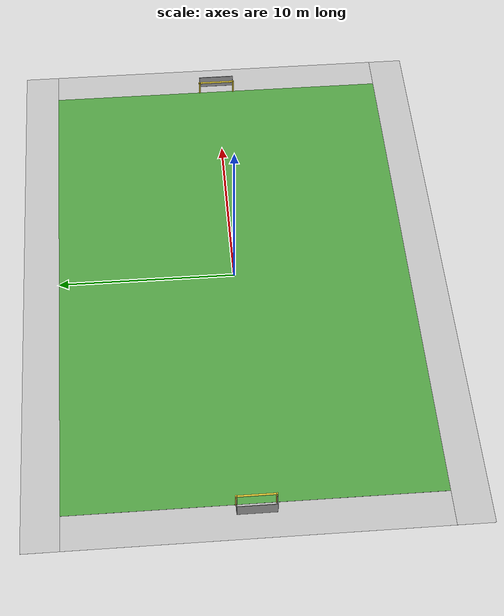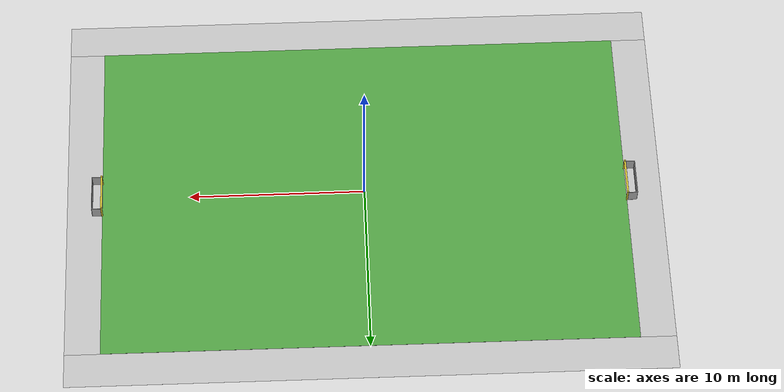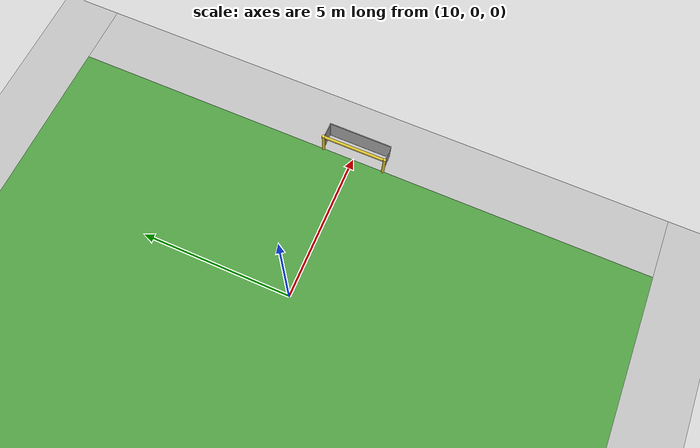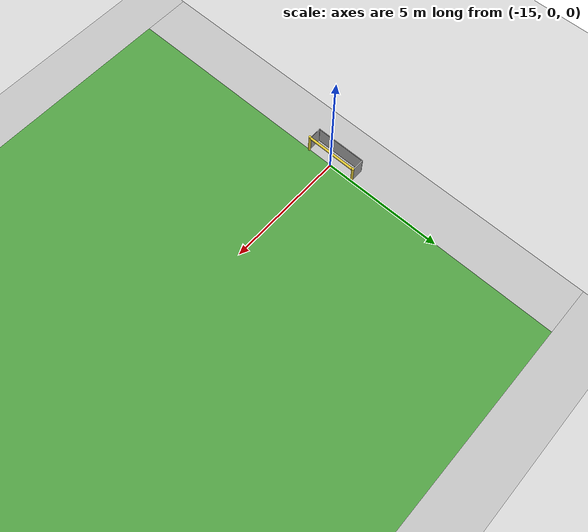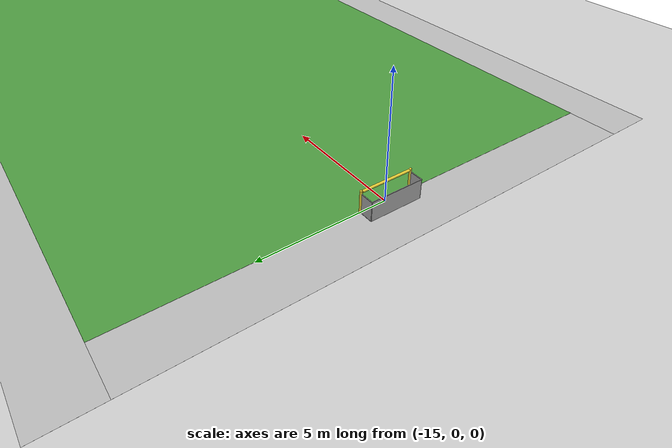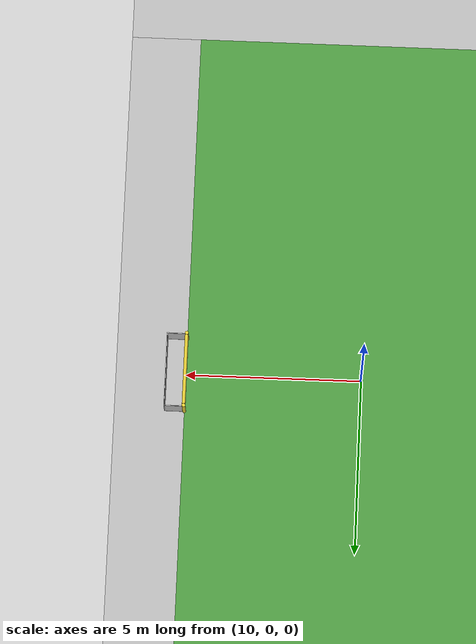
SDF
<sdf version="1.4">
 <world name="default">
  <physics type="ode"><max_step_size>0.004</max_step_size></physics>
  <scene><grid>false</grid></scene>
  <include><uri>model://sun</uri></include>
  <include><uri>model://ground_plane</uri></include>
  <include><uri>model://robocup_3Dsim_field</uri></include>
  <include><pose>-15.0 0 0 0 0 3.1416</pose><uri>model://robocup_3Dsim_goal</uri></include>
  <include><pose>15.0 0 0 0 0 0</pose><uri>model://robocup_3Dsim_goal</uri></include>
  <plugin name="hydra" filename="libHydraPlugin.so"/>
  <plugin name="game_controller" filename="librobocup_gamecontroller_plugin.so">
   <ball>soccer_ball</ball>
   <team>
    <name>red</name>
    <member>red_bot1</member>
    <member>red_bot2</member>
    <member>red_bot3</member>
    <member>red_bot4</member>
    <member>red_bot5</member>
    <member>red_bot6</member>
    <member>red_bot7</member>
    <member>red_bot8</member>
    <member>red_bot9</member>
    <member>red_bot10</member>
    <member>red_bot11</member>
   </team>
   <team>
    <name>blue</name>
    <member>blue_bot1</member>
    <member>blue_bot2</member>
    <member>blue_bot3</member>
    <member>blue_bot4</member>
    <member>blue_bot5</member>
    <member>blue_bot6</member>
    <member>blue_bot7</member>
    <member>blue_bot8</member>
    <member>blue_bot9</member>
    <member>blue_bot10</member>
    <member>blue_bot11</member>
   </team>
  </plugin>
 </world>
</sdf>

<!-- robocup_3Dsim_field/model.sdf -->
<sdf version="1.5">
  <model name="robocup_3d_field">
    <static>true</static>
    <link name="field">
      <pose>0 0 0.01 0 0 0</pose>
      <collision name="collision">
        <geometry>
          <plane>
            <normal>0 0 1</normal>
            <size>30.0 20.0</size>
          </plane>
        </geometry>
        <surface>
          <friction>
            <ode>
              <mu>100</mu>
              <mu2>50</mu2>
            </ode>
          </friction>
        </surface>
      </collision>
      <visual name="base1">
        <pose>0 11 0.001 0 0 0</pose>
        <cast_shadows>false</cast_shadows>
        <geometry>
          <plane>
            <normal>0 0 1</normal>
            <size>34.0 2.0</size>
          </plane>
        </geometry>
        <material>
          <script>
            <uri>model://../model_source/models/robocup_3Dsim_field/materials/scripts/</uri>
            <uri>model://../model_source/models/robocup_3Dsim_field/materials/textures/</uri>
            <name>RoboCup/FieldBorder</name>
          </script>
        </material>
      </visual>
      <visual name="base2">
        <pose>0 -11 0.001 0 0 0</pose>
        <cast_shadows>false</cast_shadows>
        <geometry>
          <plane>
            <normal>0 0 1</normal>
            <size>34.0 2.0</size>
          </plane>
        </geometry>
        <material>
          <script>
            <uri>model://../model_source/models/robocup_3Dsim_field/materials/scripts/</uri>
            <uri>model://../model_source/models/robocup_3Dsim_field/materials/textures/</uri>
            <name>RoboCup/FieldBorder</name>
          </script>
        </material>
      </visual>
      <visual name="base3">
        <pose>16 0 0.001 0 0 0</pose>
        <cast_shadows>false</cast_shadows>
        <geometry>
          <plane>
            <normal>0 0 1</normal>
            <size>2.0 20.0</size>
          </plane>
        </geometry>
        <material>
          <script>
            <uri>model://../model_source/models/robocup_3Dsim_field/materials/scripts/</uri>
            <uri>model://../model_source/models/robocup_3Dsim_field/materials/textures/</uri>
            <name>RoboCup/FieldBorder</name>
          </script>
        </material>
      </visual>
      <visual name="base4">
        <pose>-16 0 0.001 0 0 0</pose>
        <cast_shadows>false</cast_shadows>
        <geometry>
          <plane>
            <normal>0 0 1</normal>
            <size>2.0 20.0</size>
          </plane>
        </geometry>
        <material>
          <script>
            <uri>model://../model_source/models/robocup_3Dsim_field/materials/scripts/</uri>
            <uri>model://../model_source/models/robocup_3Dsim_field/materials/textures/</uri>
            <name>RoboCup/FieldBorder</name>
          </script>
        </material>
      </visual>
      <visual name="carpet">
        <cast_shadows>false</cast_shadows>
        <geometry>
          <plane>
            <normal>0 0 1</normal>
            <size>30.0 20.0</size>
          </plane>
        </geometry>
        <material>
          <script>
            <uri>model://../model_source/models/robocup_3Dsim_field/materials/scripts/</uri>
            <uri>model://../model_source/models/robocup_3Dsim_field/materials/textures/</uri>
            <name>RoboCup/Grass</name>
          </script>
        </material>
      </visual>
    </link>
  </model>
</sdf>

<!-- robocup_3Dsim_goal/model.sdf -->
<sdf version="1.5">
  <model name="robocup_3d_goal">
    <static>true</static>
    <link name="left_post">
      <pose>0 1.05 0.45 0 0 0</pose>
      <collision name="collision">
        <geometry>
          <cylinder>
            <radius>0.05</radius>
            <length>0.9</length>
          </cylinder>
        </geometry>
      </collision>
      <visual name="visual">
        <geometry>
          <cylinder>
            <radius>0.05</radius>
            <length>0.9</length>
          </cylinder>
        </geometry>
        <material>
          <script>
            <uri>file://media/materials/scripts/gazebo.material</uri>
            <name>Gazebo/ZincYellow</name>
          </script>
        </material>
      </visual>
    </link>
    <link name="left_support_horiz_lower">
      <pose>0.30 1.05 0.01 0 0 0</pose>
      <collision name="collision">
        <geometry>
          <box>
            <size>0.50 0.02 0.02</size>
          </box>
        </geometry>
      </collision>
      <visual name="visual">
        <geometry>
          <box>
            <size>0.50 0.02 0.02</size>
          </box>
        </geometry>
        <material>
          <script>
            <uri>file://media/materials/scripts/gazebo.material</uri>
            <name>Gazebo/White</name>
          </script>
        </material>
      </visual>
    </link>
    <link name="left_support_horiz_upper">
      <pose>0.30 1.05 0.79 0 0 0</pose>
      <collision name="collision">
        <geometry>
          <box>
            <size>0.50 0.02 0.02</size>
          </box>
        </geometry>
      </collision>
      <visual name="visual">
        <geometry>
          <box>
            <size>0.50 0.02 0.02</size>
          </box>
        </geometry>
        <material>
          <script>
            <uri>file://media/materials/scripts/gazebo.material</uri>
            <name>Gazebo/White</name>
          </script>
        </material>
      </visual>
    </link>
    <link name="left_support_vertical">
      <pose>0.56 1.05 0.4 0 1.5708 0</pose>
      <collision name="collision">
        <geometry>
          <box>
            <size>0.80 0.02 0.02</size>
          </box>
        </geometry>
      </collision>
      <visual name="visual">
        <geometry>
          <box>
            <size>0.80 0.02 0.02</size>
          </box>
        </geometry>
        <material>
          <script>
            <uri>file://media/materials/scripts/gazebo.material</uri>
            <name>Gazebo/White</name>
          </script>
        </material>
      </visual>
    </link>
    <link name="right_support_horiz_lower">
      <pose>0.30 -1.05 0.01 0 0 0</pose>
      <collision name="collision">
        <geometry>
          <box>
            <size>0.50 0.02 0.02</size>
          </box>
        </geometry>
      </collision>
      <visual name="visual">
        <geometry>
          <box>
            <size>0.50 0.02 0.02</size>
          </box>
        </geometry>
        <material>
          <script>
            <uri>file://media/materials/scripts/gazebo.material</uri>
            <name>Gazebo/White</name>
          </script>
        </material>
      </visual>
    </link>
    <link name="right_support_horiz_upper">
      <pose>0.30 -1.05 0.79 0 0 0</pose>
      <collision name="collision">
        <geometry>
          <box>
            <size>0.50 0.02 0.02</size>
          </box>
        </geometry>
      </collision>
      <visual name="visual">
        <geometry>
          <box>
            <size>0.50 0.02 0.02</size>
          </box>
        </geometry>
        <material>
          <script>
            <uri>file://media/materials/scripts/gazebo.material</uri>
            <name>Gazebo/White</name>
          </script>
        </material>
      </visual>
    </link>
    <link name="right_support_vertical">
      <pose>0.56 -1.05 0.4 0 1.5708 0</pose>
      <collision name="collision">
        <geometry>
          <box>
            <size>0.80 0.02 0.02</size>
          </box>
        </geometry>
      </collision>
      <visual name="visual">
        <geometry>
          <box>
            <size>0.80 0.02 0.02</size>
          </box>
        </geometry>
        <material>
          <script>
            <uri>file://media/materials/scripts/gazebo.material</uri>
            <name>Gazebo/White</name>
          </script>
        </material>
      </visual>
    </link>
    <link name="center_support_horiz_lower">
      <pose>0.56 0 0.01 0 1.5708 0</pose>
      <collision name="collision">
        <geometry>
          <box>
            <size>0.02 2.08 0.02</size>
          </box>
        </geometry>
      </collision>
      <visual name="visual">
        <geometry>
          <box>
            <size>0.02 2.08 0.02</size>
          </box>
        </geometry>
        <material>
          <script>
            <uri>file://media/materials/scripts/gazebo.material</uri>
            <name>Gazebo/White</name>
          </script>
        </material>
      </visual>
    </link>
    <link name="center_support_horiz_upper">
      <pose>0.56 0 0.79 0 1.5708 0</pose>
      <collision name="collision">
        <geometry>
          <box>
            <size>0.02 2.08 0.02</size>
          </box>
        </geometry>
      </collision>
      <visual name="visual">
        <geometry>
          <box>
            <size>0.02 2.08 0.02</size>
          </box>
        </geometry>
        <material>
          <script>
            <uri>file://media/materials/scripts/gazebo.material</uri>
            <name>Gazebo/White</name>
          </script>
        </material>
      </visual>
    </link>
    <link name="right_post">
      <pose>0 -1.05 0.45 0 0 0</pose>
      <collision name="collision">
        <geometry>
          <cylinder>
            <radius>0.05</radius>
            <length>0.9</length>
          </cylinder>
        </geometry>
      </collision>
      <visual name="visual">
        <geometry>
          <cylinder>
            <radius>0.05</radius>
            <length>0.9</length>
          </cylinder>
        </geometry>
        <material>
          <script>
            <uri>file://media/materials/scripts/gazebo.material</uri>
            <name>Gazebo/ZincYellow</name>
          </script>
        </material>
      </visual>
    </link>
    <link name="crossbar">
      <pose>0 0 0.85 1.57 1.57 0</pose>
      <collision name="collision">
        <geometry>
          <cylinder>
            <radius>0.05</radius>
            <length>2.0</length>
          </cylinder>
        </geometry>
      </collision>
      <visual name="visual">
        <geometry>
          <cylinder>
            <radius>0.05</radius>
            <length>2.0</length>
          </cylinder>
        </geometry>
        <material>
          <script>
            <uri>file://media/materials/scripts/gazebo.material</uri>
            <name>Gazebo/ZincYellow</name>
          </script>
        </material>
      </visual>
    </link>
    <link name="center_net">
      <pose>0.56 0 0.40 0 0 0</pose>
      <collision name="collision">
        <geometry>
          <box>
            <size>0.01 2.1 0.80</size>
          </box>
        </geometry>
      </collision>
      <visual name="visual">
        <geometry>
          <box>
            <size>0.01 2.1 0.80</size>
          </box>
        </geometry>
        <material>
          <script>
            <uri>model://../model_source/models/robocup09_spl_field/materials/scripts/</uri>
            <uri>model://../model_source/models/robocup09_spl_field/materials/textures/</uri>
            <name>RoboCup/Net</name>
          </script>
        </material>
      </visual>
    </link>
    <link name="left_net">
      <pose>0.30 1.05 0.40 0 0 0</pose>
      <collision name="collision">
        <geometry>
          <box>
            <size>0.50 0.01 0.76</size>
          </box>
        </geometry>
      </collision>
      <visual name="visual">
        <geometry>
          <box>
            <size>0.50 0.01 0.76</size>
          </box>
        </geometry>
        <material>
          <script>
            <uri>model://../model_source/models/robocup09_spl_field/materials/scripts/</uri>
            <uri>model://../model_source/models/robocup09_spl_field/materials/textures/</uri>
            <name>RoboCup/Net</name>
          </script>
        </material>
      </visual>
    </link>
    <link name="right_net">
      <pose>0.30 -1.05 0.40 0 0 0</pose>
      <collision name="collision">
        <geometry>
          <box>
            <size>0.50 0.01 0.76</size>
          </box>
        </geometry>
      </collision>
      <visual name="visual">
        <geometry>
          <box>
            <size>0.50 0.01 0.76</size>
          </box>
        </geometry>
        <material>
          <script>
            <uri>model://../model_source/models/robocup09_spl_field/materials/scripts/</uri>
            <uri>model://../model_source/models/robocup09_spl_field/materials/textures/</uri>
            <name>RoboCup/Net</name>
          </script>
        </material>
      </visual>
    </link>
  </model>
</sdf>
